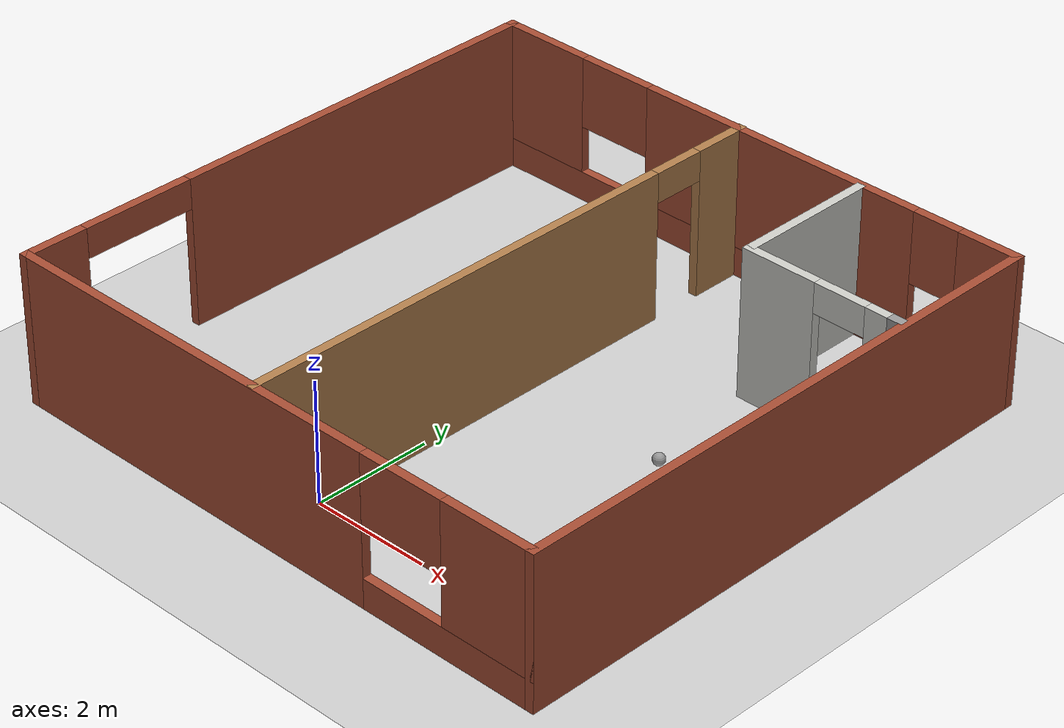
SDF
<sdf version="1.7">
 <world name="default">
  <plugin name="welcomeworld" filename="libwelcomeworld.so"/>
  <light name="sun" type="directional">
   <pose>0 0 10 0 -0 0</pose>
   <diffuse>0.8 0.8 0.8 1</diffuse>
   <specular>0.2 0.2 0.2 1</specular>
   <attenuation>
    <range>1000</range>
    <constant>0.9</constant>
    <linear>0.01</linear>
    <quadratic>0.001</quadratic>
   </attenuation>
   <direction>-0.5 0.1 -0.9</direction>
   <spot><inner_angle>0</inner_angle><outer_angle>0</outer_angle><falloff>0</falloff></spot>
  </light>
  <model name="ground_plane">
   <static>1</static>
   <link name="link">
    <collision name="collision">
     <geometry><plane><normal>0 0 1</normal><size>100 100</size></plane></geometry>
     <surface>
      <contact><collide_bitmask>65535</collide_bitmask></contact>
      <friction><ode><mu>100</mu><mu2>50</mu2></ode></friction>
     </surface>
    </collision>
    <visual name="visual">
     <cast_shadows>0</cast_shadows>
     <geometry><plane><normal>0 0 1</normal><size>100 100</size></plane></geometry>
     <material>
      <script><uri>file://media/materials/scripts/gazebo.material</uri><name>Gazebo/Grey</name></script>
     </material>
    </visual>
   </link>
  </model>
  <gravity>0 0 -9.8</gravity>
  <magnetic_field>6e-06 2.3e-05 -4.2e-05</magnetic_field>
  <atmosphere type="adiabatic"/>
  <physics type="ode">
   <max_step_size>0.001</max_step_size>
   <real_time_factor>1</real_time_factor>
   <real_time_update_rate>1000</real_time_update_rate>
  </physics>
  <scene><ambient>0.4 0.4 0.4 1</ambient><background>0.7 0.7 0.7 1</background><shadows>1</shadows></scene>
  <spherical_coordinates>
   <surface_model>EARTH_WGS84</surface_model>
   <latitude_deg>0</latitude_deg>
   <longitude_deg>0</longitude_deg>
   <elevation>0</elevation>
   <heading_deg>0</heading_deg>
  </spherical_coordinates>
  <model name="apartment_0">
   <pose>0.275 3.66762 0 0 -0 0</pose>
   <link name="Wall_10">
    <collision name="Wall_10_Collision">
     <geometry><box><size>2.5 0.15 2.5</size></box></geometry>
     <pose>0 0 1.25 0 -0 0</pose>
    </collision>
    <visual name="Wall_10_Visual">
     <pose>0 0 1.25 0 -0 0</pose>
     <geometry><box><size>2.5 0.15 2.5</size></box></geometry>
     <material>
      <script><uri>file://media/materials/scripts/gazebo.material</uri><name>Gazebo/CeilingTiled</name></script>
      <ambient>1 1 1 1</ambient>
     </material>
     <meta><layer>0</layer></meta>
    </visual>
    <pose>2.12495 3.5401 0 0 -0 -1.5708</pose>
   </link>
   <link name="Wall_11">
    <pose>3.42495 2.3651 0 0 -0 0</pose>
    <visual name="Wall_11_Visual_0">
     <pose>-0.718233 0 1.25 0 -0 0</pose>
     <geometry><box><size>1.31353 0.15 2.5</size></box></geometry>
     <material>
      <script><uri>file://media/materials/scripts/gazebo.material</uri><name>Gazebo/CeilingTiled</name></script>
      <ambient>1 1 1 1</ambient>
     </material>
     <meta><layer>0</layer></meta>
    </visual>
    <collision name="Wall_11_Collision_0">
     <geometry><box><size>1.31353 0.15 2.5</size></box></geometry>
     <pose>-0.718233 0 1.25 0 -0 0</pose>
    </collision>
    <visual name="Wall_11_Visual_1">
     <pose>1.10677 0 1.25 0 -0 0</pose>
     <geometry><box><size>0.536465 0.15 2.5</size></box></geometry>
     <material>
      <script><uri>file://media/materials/scripts/gazebo.material</uri><name>Gazebo/CeilingTiled</name></script>
      <ambient>1 1 1 1</ambient>
     </material>
     <meta><layer>0</layer></meta>
    </visual>
    <collision name="Wall_11_Collision_1">
     <geometry><box><size>0.536465 0.15 2.5</size></box></geometry>
     <pose>1.10677 0 1.25 0 -0 0</pose>
    </collision>
    <visual name="Wall_11_Visual_2">
     <pose>0.388535 0 2.25 0 -0 0</pose>
     <geometry><box><size>0.9 0.15 0.5</size></box></geometry>
     <material>
      <script><uri>file://media/materials/scripts/gazebo.material</uri><name>Gazebo/CeilingTiled</name></script>
      <ambient>1 1 1 1</ambient>
     </material>
     <meta><layer>0</layer></meta>
    </visual>
    <collision name="Wall_11_Collision_2">
     <geometry><box><size>0.9 0.15 0.5</size></box></geometry>
     <pose>0.388535 0 2.25 0 -0 0</pose>
    </collision>
   </link>
   <link name="Wall_12">
    <collision name="Wall_12_Collision">
     <geometry><box><size>0.25 0.15 2.5</size></box></geometry>
     <pose>0 0 1.25 0 -0 0</pose>
    </collision>
    <visual name="Wall_12_Visual">
     <pose>0 0 1.25 0 -0 0</pose>
     <geometry><box><size>0.25 0.15 2.5</size></box></geometry>
     <material>
      <script><uri>file://media/materials/scripts/gazebo.material</uri><name>Gazebo/Grey</name></script>
      <ambient>1 1 1 1</ambient>
     </material>
     <meta><layer>0</layer></meta>
    </visual>
    <pose>4.77495 2.3651 0 0 -0 0</pose>
   </link>
   <link name="Wall_2">
    <pose>0 -4.80762 0 0 -0 0</pose>
    <visual name="Wall_2_Visual_0">
     <pose>-1.55657 0 1.25 0 -0 0</pose>
     <geometry><box><size>6.88686 0.15 2.5</size></box></geometry>
     <material>
      <script><uri>file://media/materials/scripts/gazebo.material</uri><name>Gazebo/Bricks</name></script>
      <ambient>1 1 1 1</ambient>
     </material>
     <meta><layer>0</layer></meta>
    </visual>
    <collision name="Wall_2_Collision_0">
     <geometry><box><size>6.88686 0.15 2.5</size></box></geometry>
     <pose>-1.55657 0 1.25 0 -0 0</pose>
    </collision>
    <visual name="Wall_2_Visual_1">
     <pose>3.44343 0 0.25 0 -0 0</pose>
     <geometry><box><size>3.11314 0.15 0.5</size></box></geometry>
     <material>
      <script><uri>file://media/materials/scripts/gazebo.material</uri><name>Gazebo/Bricks</name></script>
      <ambient>1 1 1 1</ambient>
     </material>
     <meta><layer>0</layer></meta>
    </visual>
    <collision name="Wall_2_Collision_1">
     <geometry><box><size>3.11314 0.15 0.5</size></box></geometry>
     <pose>3.44343 0 0.25 0 -0 0</pose>
    </collision>
    <visual name="Wall_2_Visual_2">
     <pose>4.17882 0 1.5 0 -0 0</pose>
     <geometry><box><size>1.64235 0.15 2</size></box></geometry>
     <material>
      <script><uri>file://media/materials/scripts/gazebo.material</uri><name>Gazebo/Bricks</name></script>
      <ambient>1 1 1 1</ambient>
     </material>
     <meta><layer>0</layer></meta>
    </visual>
    <collision name="Wall_2_Collision_2">
     <geometry><box><size>1.64235 0.15 2</size></box></geometry>
     <pose>4.17882 0 1.5 0 -0 0</pose>
    </collision>
    <visual name="Wall_2_Visual_3">
     <pose>2.62226 0 1.9 0 -0 0</pose>
     <geometry><box><size>1.47079 0.15 1.2</size></box></geometry>
     <material>
      <script><uri>file://media/materials/scripts/gazebo.material</uri><name>Gazebo/Bricks</name></script>
      <ambient>1 1 1 1</ambient>
     </material>
     <meta><layer>0</layer></meta>
    </visual>
    <collision name="Wall_2_Collision_3">
     <geometry><box><size>1.47079 0.15 1.2</size></box></geometry>
     <pose>2.62226 0 1.9 0 -0 0</pose>
    </collision>
   </link>
   <link name="Wall_3">
    <collision name="Wall_3_Collision">
     <geometry><box><size>9.75 0.15 2.5</size></box></geometry>
     <pose>0 0 1.25 0 -0 0</pose>
    </collision>
    <visual name="Wall_3_Visual">
     <pose>0 0 1.25 0 -0 0</pose>
     <geometry><box><size>9.75 0.15 2.5</size></box></geometry>
     <material>
      <script><uri>file://media/materials/scripts/gazebo.material</uri><name>Gazebo/Bricks</name></script>
      <ambient>1 1 1 1</ambient>
     </material>
     <meta><layer>0</layer></meta>
    </visual>
    <pose>4.925 -0.007622 0 0 -0 1.5708</pose>
   </link>
   <link name="Wall_4">
    <pose>0 4.79238 0 0 -0 3.14159</pose>
    <visual name="Wall_4_Visual_0">
     <pose>-4.46796 0 1.25 0 -0 0</pose>
     <geometry><box><size>1.06408 0.15 2.5</size></box></geometry>
     <material>
      <script><uri>file://media/materials/scripts/gazebo.material</uri><name>Gazebo/Bricks</name></script>
      <ambient>1 1 1 1</ambient>
     </material>
     <meta><layer>0</layer></meta>
    </visual>
    <collision name="Wall_4_Collision_0">
     <geometry><box><size>1.06408 0.15 2.5</size></box></geometry>
     <pose>-4.46796 0 1.25 0 -0 0</pose>
    </collision>
    <visual name="Wall_4_Visual_1">
     <pose>0.532042 0 0.25 0 -0 0</pose>
     <geometry><box><size>8.93591 0.15 0.5</size></box></geometry>
     <material>
      <script><uri>file://media/materials/scripts/gazebo.material</uri><name>Gazebo/Bricks</name></script>
      <ambient>1 1 1 1</ambient>
     </material>
     <meta><layer>0</layer></meta>
    </visual>
    <collision name="Wall_4_Collision_1">
     <geometry><box><size>8.93591 0.15 0.5</size></box></geometry>
     <pose>0.532042 0 0.25 0 -0 0</pose>
    </collision>
    <visual name="Wall_4_Visual_2">
     <pose>-0.563632 0 1.5 0 -0 0</pose>
     <geometry><box><size>5.14457 0.15 2</size></box></geometry>
     <material>
      <script><uri>file://media/materials/scripts/gazebo.material</uri><name>Gazebo/Bricks</name></script>
      <ambient>1 1 1 1</ambient>
     </material>
     <meta><layer>0</layer></meta>
    </visual>
    <collision name="Wall_4_Collision_2">
     <geometry><box><size>5.14457 0.15 2</size></box></geometry>
     <pose>-0.563632 0 1.5 0 -0 0</pose>
    </collision>
    <visual name="Wall_4_Visual_3">
     <pose>4.17033 0 1.5 0 -0 0</pose>
     <geometry><box><size>1.65935 0.15 2</size></box></geometry>
     <material>
      <script><uri>file://media/materials/scripts/gazebo.material</uri><name>Gazebo/Bricks</name></script>
      <ambient>1 1 1 1</ambient>
     </material>
     <meta><layer>0</layer></meta>
    </visual>
    <collision name="Wall_4_Collision_3">
     <geometry><box><size>1.65935 0.15 2</size></box></geometry>
     <pose>4.17033 0 1.5 0 -0 0</pose>
    </collision>
    <visual name="Wall_4_Visual_4">
     <pose>-3.53592 0 1.9 0 -0 0</pose>
     <geometry><box><size>0.8 0.15 1.2</size></box></geometry>
     <material>
      <script><uri>file://media/materials/scripts/gazebo.material</uri><name>Gazebo/Bricks</name></script>
      <ambient>1 1 1 1</ambient>
     </material>
     <meta><layer>0</layer></meta>
    </visual>
    <collision name="Wall_4_Collision_4">
     <geometry><box><size>0.8 0.15 1.2</size></box></geometry>
     <pose>-3.53592 0 1.9 0 -0 0</pose>
    </collision>
    <visual name="Wall_4_Visual_5">
     <pose>2.67465 0 1.9 0 -0 0</pose>
     <geometry><box><size>1.332 0.15 1.2</size></box></geometry>
     <material>
      <script><uri>file://media/materials/scripts/gazebo.material</uri><name>Gazebo/Bricks</name></script>
      <ambient>1 1 1 1</ambient>
     </material>
     <meta><layer>0</layer></meta>
    </visual>
    <collision name="Wall_4_Collision_5">
     <geometry><box><size>1.332 0.15 1.2</size></box></geometry>
     <pose>2.67465 0 1.9 0 -0 0</pose>
    </collision>
   </link>
   <link name="Wall_5">
    <pose>-4.925 -0.007622 0 0 -0 -1.5708</pose>
    <visual name="Wall_5_Visual_0">
     <pose>-1.50223 0 1.25 0 -0 0</pose>
     <geometry><box><size>6.74555 0.15 2.5</size></box></geometry>
     <material>
      <script><uri>file://media/materials/scripts/gazebo.material</uri><name>Gazebo/Bricks</name></script>
      <ambient>1 1 1 1</ambient>
     </material>
     <meta><layer>0</layer></meta>
    </visual>
    <collision name="Wall_5_Collision_0">
     <geometry><box><size>6.74555 0.15 2.5</size></box></geometry>
     <pose>-1.50223 0 1.25 0 -0 0</pose>
    </collision>
    <visual name="Wall_5_Visual_1">
     <pose>4.33165 0 1.25 0 -0 0</pose>
     <geometry><box><size>1.08671 0.15 2.5</size></box></geometry>
     <material>
      <script><uri>file://media/materials/scripts/gazebo.material</uri><name>Gazebo/Bricks</name></script>
      <ambient>1 1 1 1</ambient>
     </material>
     <meta><layer>0</layer></meta>
    </visual>
    <collision name="Wall_5_Collision_1">
     <geometry><box><size>1.08671 0.15 2.5</size></box></geometry>
     <pose>4.33165 0 1.25 0 -0 0</pose>
    </collision>
    <visual name="Wall_5_Visual_2">
     <pose>2.82942 0 2.25 0 -0 0</pose>
     <geometry><box><size>1.91775 0.15 0.5</size></box></geometry>
     <material>
      <script><uri>file://media/materials/scripts/gazebo.material</uri><name>Gazebo/Bricks</name></script>
      <ambient>1 1 1 1</ambient>
     </material>
     <meta><layer>0</layer></meta>
    </visual>
    <collision name="Wall_5_Collision_2">
     <geometry><box><size>1.91775 0.15 0.5</size></box></geometry>
     <pose>2.82942 0 2.25 0 -0 0</pose>
    </collision>
   </link>
   <link name="Wall_8">
    <pose>-0.234374 0.007623 0 0 -0 -1.5708</pose>
    <visual name="Wall_8_Visual_0">
     <pose>-4.36858 0 1.25 0 -0 0</pose>
     <geometry><box><size>1.01284 0.15 2.5</size></box></geometry>
     <material>
      <script><uri>file://media/materials/scripts/gazebo.material</uri><name>Gazebo/Wood</name></script>
      <ambient>1 1 1 1</ambient>
     </material>
     <meta><layer>0</layer></meta>
    </visual>
    <collision name="Wall_8_Collision_0">
     <geometry><box><size>1.01284 0.15 2.5</size></box></geometry>
     <pose>-4.36858 0 1.25 0 -0 0</pose>
    </collision>
    <visual name="Wall_8_Visual_1">
     <pose>0.956418 0 1.25 0 -0 0</pose>
     <geometry><box><size>7.83716 0.15 2.5</size></box></geometry>
     <material>
      <script><uri>file://media/materials/scripts/gazebo.material</uri><name>Gazebo/Wood</name></script>
      <ambient>1 1 1 1</ambient>
     </material>
     <meta><layer>0</layer></meta>
    </visual>
    <collision name="Wall_8_Collision_1">
     <geometry><box><size>7.83716 0.15 2.5</size></box></geometry>
     <pose>0.956418 0 1.25 0 -0 0</pose>
    </collision>
    <visual name="Wall_8_Visual_2">
     <pose>-3.41216 0 2.25 0 -0 0</pose>
     <geometry><box><size>0.9 0.15 0.5</size></box></geometry>
     <material>
      <script><uri>file://media/materials/scripts/gazebo.material</uri><name>Gazebo/Wood</name></script>
      <ambient>1 1 1 1</ambient>
     </material>
     <meta><layer>0</layer></meta>
    </visual>
    <collision name="Wall_8_Collision_2">
     <geometry><box><size>0.9 0.15 0.5</size></box></geometry>
     <pose>-3.41216 0 2.25 0 -0 0</pose>
    </collision>
   </link>
   <static>1</static>
  </model>
  <model name="my_ball">
   <link name="link_0">
    <inertial>
     <mass>1</mass>
     <inertia><ixx>0.1</ixx><ixy>0</ixy><ixz>0</ixz><iyy>0.1</iyy><iyz>0</iyz><izz>0.1</izz></inertia>
    </inertial>
    <visual name="visual">
     <geometry><sphere><radius>0.1</radius></sphere></geometry>
     <material>
      <lighting>1</lighting>
      <script><uri>file://media/materials/scripts/gazebo.material</uri><name>Gazebo/Grey</name></script>
      <shader type="pixel"><normal_map>__default__</normal_map></shader>
      <ambient>1 1 1 1</ambient>
      <diffuse>1 1 1 1</diffuse>
      <specular>1 1 1 1</specular>
      <emissive>1 1 1 1</emissive>
     </material>
    </visual>
    <collision name="collision">
     <geometry><sphere><radius>0.1</radius></sphere></geometry>
     <surface>
      <friction>
       <ode><mu>1</mu><mu2>1</mu2><fdir1>0 0 0</fdir1><slip1>0</slip1><slip2>0</slip2></ode>
       <torsional>
        <coefficient>1</coefficient>
        <patch_radius>0</patch_radius>
        <surface_radius>0</surface_radius>
        <use_patch_radius>1</use_patch_radius>
        <ode><slip>0</slip></ode>
       </torsional>
      </friction>
      <bounce><restitution_coefficient>0</restitution_coefficient><threshold>1e+06</threshold></bounce>
      <contact>
       <collide_without_contact>0</collide_without_contact>
       <collide_without_contact_bitmask>1</collide_without_contact_bitmask>
       <collide_bitmask>1</collide_bitmask>
       <ode>
        <soft_cfm>0</soft_cfm>
        <soft_erp>0.2</soft_erp>
        <kp>1e+13</kp>
        <kd>1</kd>
        <max_vel>0.01</max_vel>
        <min_depth>0</min_depth>
       </ode>
       <bullet>
        <split_impulse>1</split_impulse>
        <split_impulse_penetration_threshold>-0.01</split_impulse_penetration_threshold>
        <soft_cfm>0</soft_cfm>
        <soft_erp>0.2</soft_erp>
        <kp>1e+13</kp>
        <kd>1</kd>
       </bullet>
      </contact>
     </surface>
    </collision>
   </link>
   <static>0</static>
   <pose>2.6949 3.91811 0.1 0 -0 0</pose>
  </model>
 </world>
</sdf>
